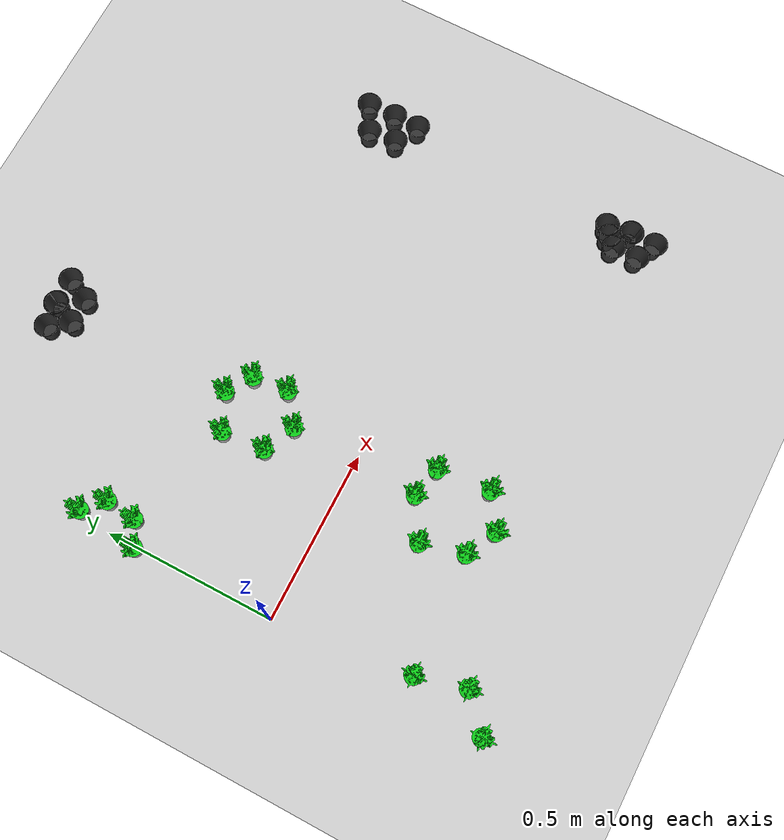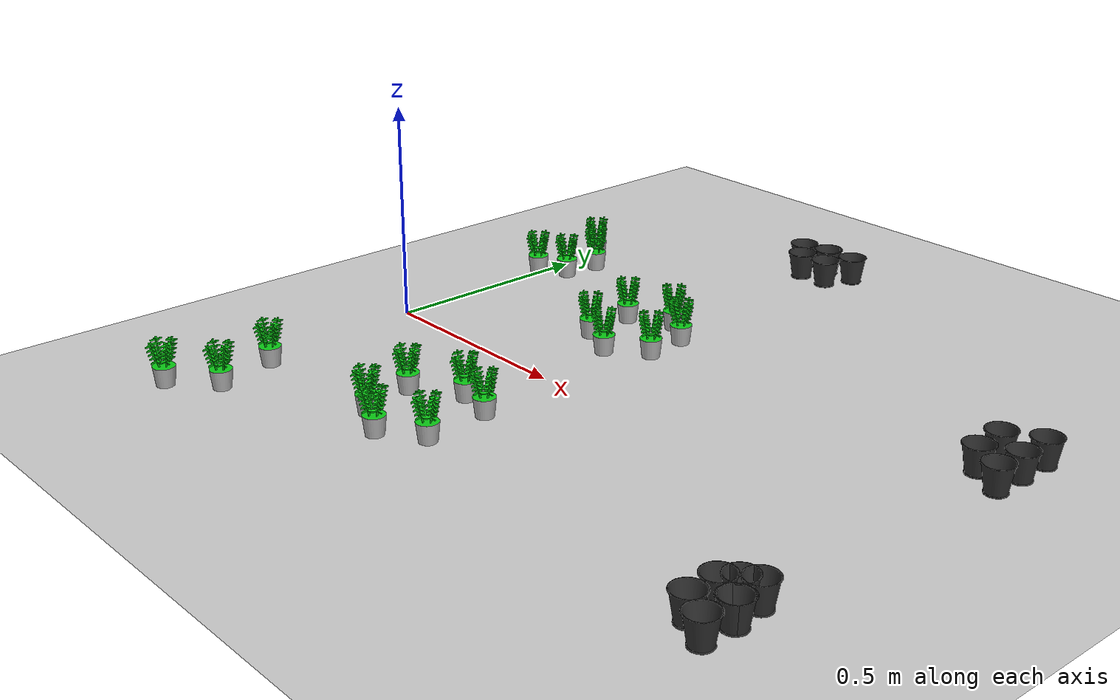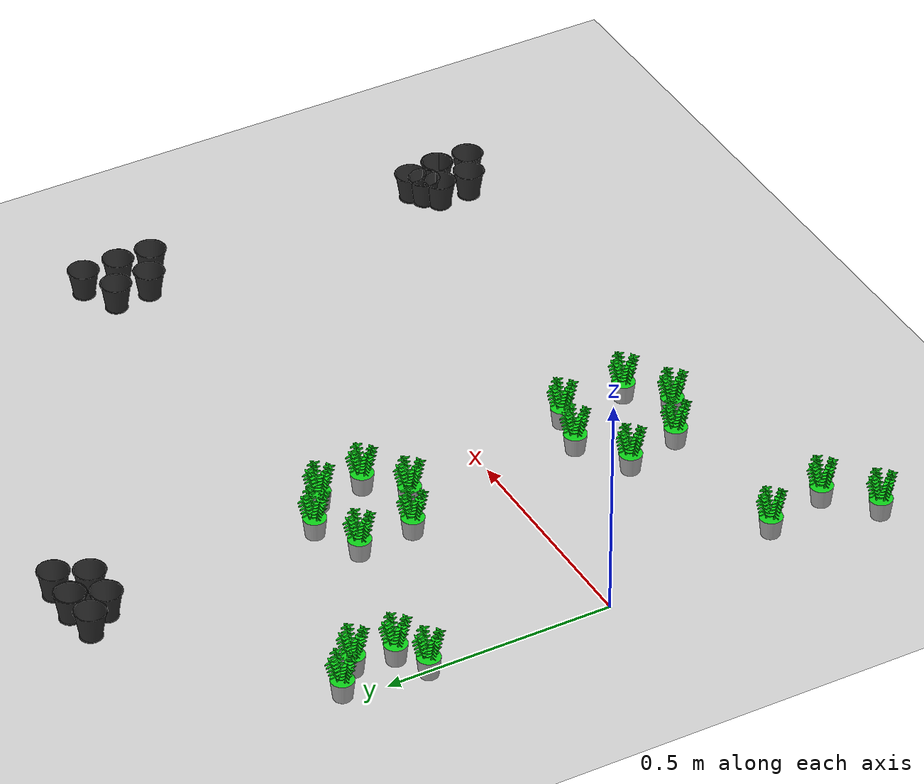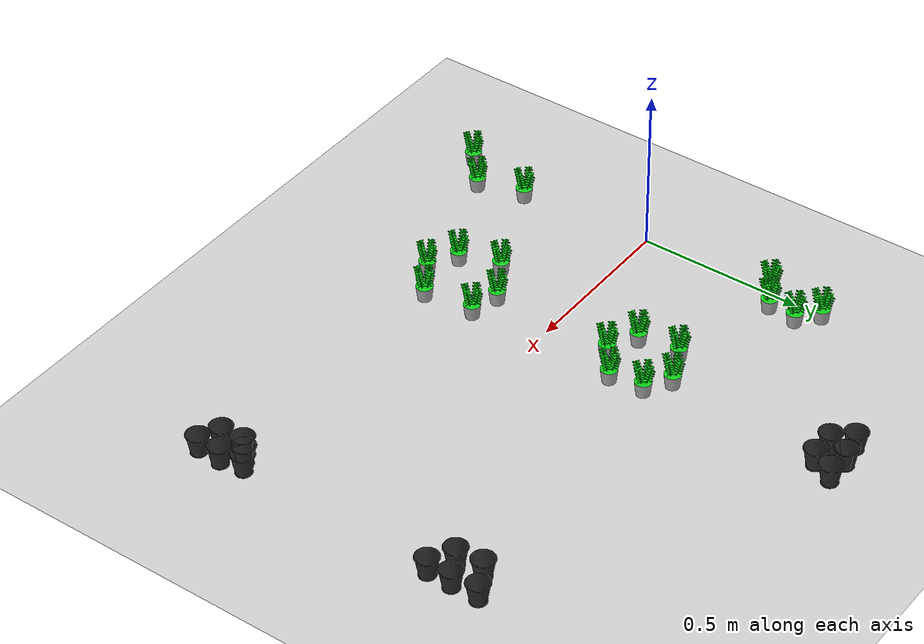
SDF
<sdf version="1.7">
 <world name="arena_eurobot">
  <model name="ground_plane">
   <static>true</static>
   <link name="link">
    <collision name="collision">
     <geometry><plane><normal>0 0 0</normal><size>100 100</size></plane></geometry>
    </collision>
    <visual name="visual">
     <geometry><plane><normal>0 0 0</normal><size>100 100</size></plane></geometry>
     <material>
      <ambient>0.8 0.8 0.8 1</ambient>
      <diffuse>0.8 0.8 0.8 1</diffuse>
      <specular>0.8 0.8 0.8 1</specular>
     </material>
    </visual>
   </link>
  </model>
  <model name="pot_0">
   <link name="base_link">
    <inertial>
     <pose>0 0 0.028448 0 -0 0</pose>
     <mass>0.016564</mass>
     <inertia>
      <ixx>1.415e-05</ixx>
      <ixy>-1.1112e-10</ixy>
      <ixz>-4.1716e-13</ixz>
      <iyy>1.4151e-05</iyy>
      <iyz>-1.5885e-13</iyz>
      <izz>1.1192e-05</izz>
     </inertia>
    </inertial>
    <collision name="base_link_collision">
     <geometry><mesh><scale>1 1 1</scale><uri>pot/meshes/base_link.dae</uri></mesh></geometry>
    </collision>
    <visual name="base_link_visual">
     <geometry><mesh><scale>1 1 1</scale><uri>pot/meshes/base_link.dae</uri></mesh></geometry>
    </visual>
   </link>
   <pose>1.39387 -0.336566 0 0 -0 0</pose>
  </model>
  <model name="pot_17">
   <link name="base_link">
    <inertial>
     <pose>0 0 0.028448 0 -0 0</pose>
     <mass>0.016564</mass>
     <inertia>
      <ixx>1.415e-05</ixx>
      <ixy>-1.1112e-10</ixy>
      <ixz>-4.1716e-13</ixz>
      <iyy>1.4151e-05</iyy>
      <iyz>-1.5885e-13</iyz>
      <izz>1.1192e-05</izz>
     </inertia>
    </inertial>
    <collision name="base_link_collision">
     <geometry><mesh><scale>1 1 1</scale><uri>pot/meshes/base_link.dae</uri></mesh></geometry>
    </collision>
    <visual name="base_link_visual">
     <geometry><mesh><scale>1 1 1</scale><uri>pot/meshes/base_link.dae</uri></mesh></geometry>
    </visual>
   </link>
   <pose>0.488812 0.949565 0 0 -0 0</pose>
  </model>
  <model name="pot_18">
   <link name="base_link">
    <inertial>
     <pose>0 0 0.028448 0 -0 0</pose>
     <mass>0.016564</mass>
     <inertia>
      <ixx>1.415e-05</ixx>
      <ixy>-1.1112e-10</ixy>
      <ixz>-4.1716e-13</ixz>
      <iyy>1.4151e-05</iyy>
      <iyz>-1.5885e-13</iyz>
      <izz>1.1192e-05</izz>
     </inertia>
    </inertial>
    <collision name="base_link_collision">
     <geometry><mesh><scale>1 1 1</scale><uri>pot/meshes/base_link.dae</uri></mesh></geometry>
    </collision>
    <visual name="base_link_visual">
     <geometry><mesh><scale>1 1 1</scale><uri>pot/meshes/base_link.dae</uri></mesh></geometry>
    </visual>
   </link>
   <pose>0.486427 0.95078 0 0 -0 0</pose>
  </model>
  <model name="pot_19">
   <link name="base_link">
    <inertial>
     <pose>0 0 0.028448 0 -0 0</pose>
     <mass>0.016564</mass>
     <inertia>
      <ixx>1.415e-05</ixx>
      <ixy>-1.1112e-10</ixy>
      <ixz>-4.1716e-13</ixz>
      <iyy>1.4151e-05</iyy>
      <iyz>-1.5885e-13</iyz>
      <izz>1.1192e-05</izz>
     </inertia>
    </inertial>
    <collision name="base_link_collision">
     <geometry><mesh><scale>1 1 1</scale><uri>pot/meshes/base_link.dae</uri></mesh></geometry>
    </collision>
    <visual name="base_link_visual">
     <geometry><mesh><scale>1 1 1</scale><uri>pot/meshes/base_link.dae</uri></mesh></geometry>
    </visual>
   </link>
   <pose>0.565174 0.949425 0 0 -0 0</pose>
  </model>
  <model name="pot_20">
   <link name="base_link">
    <inertial>
     <pose>0 0 0.028448 0 -0 0</pose>
     <mass>0.016564</mass>
     <inertia>
      <ixx>1.415e-05</ixx>
      <ixy>-1.1112e-10</ixy>
      <ixz>-4.1716e-13</ixz>
      <iyy>1.4151e-05</iyy>
      <iyz>-1.5885e-13</iyz>
      <izz>1.1192e-05</izz>
     </inertia>
    </inertial>
    <collision name="base_link_collision">
     <geometry><mesh><scale>1 1 1</scale><uri>pot/meshes/base_link.dae</uri></mesh></geometry>
    </collision>
    <visual name="base_link_visual">
     <geometry><mesh><scale>1 1 1</scale><uri>pot/meshes/base_link.dae</uri></mesh></geometry>
    </visual>
   </link>
   <pose>0.417508 0.939307 0 0 -0 0</pose>
  </model>
  <model name="pot_21">
   <link name="base_link">
    <inertial>
     <pose>0 0 0.028448 0 -0 0</pose>
     <mass>0.016564</mass>
     <inertia>
      <ixx>1.415e-05</ixx>
      <ixy>-1.1112e-10</ixy>
      <ixz>-4.1716e-13</ixz>
      <iyy>1.4151e-05</iyy>
      <iyz>-1.5885e-13</iyz>
      <izz>1.1192e-05</izz>
     </inertia>
    </inertial>
    <collision name="base_link_collision">
     <geometry><mesh><scale>1 1 1</scale><uri>pot/meshes/base_link.dae</uri></mesh></geometry>
    </collision>
    <visual name="base_link_visual">
     <geometry><mesh><scale>1 1 1</scale><uri>pot/meshes/base_link.dae</uri></mesh></geometry>
    </visual>
   </link>
   <pose>0.458127 0.884732 0 0 -0 0</pose>
  </model>
  <model name="pot_22">
   <link name="base_link">
    <inertial>
     <pose>0 0 0.028448 0 -0 0</pose>
     <mass>0.016564</mass>
     <inertia>
      <ixx>1.415e-05</ixx>
      <ixy>-1.1112e-10</ixy>
      <ixz>-4.1716e-13</ixz>
      <iyy>1.4151e-05</iyy>
      <iyz>-1.5885e-13</iyz>
      <izz>1.1192e-05</izz>
     </inertia>
    </inertial>
    <collision name="base_link_collision">
     <geometry><mesh><scale>1 1 1</scale><uri>pot/meshes/base_link.dae</uri></mesh></geometry>
    </collision>
    <visual name="base_link_visual">
     <geometry><mesh><scale>1 1 1</scale><uri>pot/meshes/base_link.dae</uri></mesh></geometry>
    </visual>
   </link>
   <pose>0.533024 0.884479 0 0 -0 0</pose>
  </model>
  <model name="pot_23">
   <link name="base_link">
    <inertial>
     <pose>0 0 0.028448 0 -0 0</pose>
     <mass>0.016564</mass>
     <inertia>
      <ixx>1.415e-05</ixx>
      <ixy>-1.1112e-10</ixy>
      <ixz>-4.1716e-13</ixz>
      <iyy>1.4151e-05</iyy>
      <iyz>-1.5885e-13</iyz>
      <izz>1.1192e-05</izz>
     </inertia>
    </inertial>
    <collision name="base_link_collision">
     <geometry><mesh><scale>1 1 1</scale><uri>pot/meshes/base_link.dae</uri></mesh></geometry>
    </collision>
    <visual name="base_link_visual">
     <geometry><mesh><scale>1 1 1</scale><uri>pot/meshes/base_link.dae</uri></mesh></geometry>
    </visual>
   </link>
   <pose>1.36873 0.420007 0 0 -0 0</pose>
  </model>
  <model name="pot_24">
   <link name="base_link">
    <inertial>
     <pose>0 0 0.028448 0 -0 0</pose>
     <mass>0.016564</mass>
     <inertia>
      <ixx>1.415e-05</ixx>
      <ixy>-1.1112e-10</ixy>
      <ixz>-4.1716e-13</ixz>
      <iyy>1.4151e-05</iyy>
      <iyz>-1.5885e-13</iyz>
      <izz>1.1192e-05</izz>
     </inertia>
    </inertial>
    <collision name="base_link_collision">
     <geometry><mesh><scale>1 1 1</scale><uri>pot/meshes/base_link.dae</uri></mesh></geometry>
    </collision>
    <visual name="base_link_visual">
     <geometry><mesh><scale>1 1 1</scale><uri>pot/meshes/base_link.dae</uri></mesh></geometry>
    </visual>
   </link>
   <pose>1.44644 0.377024 0 0 -0 0</pose>
  </model>
  <model name="pot_25">
   <link name="base_link">
    <inertial>
     <pose>0 0 0.028448 0 -0 0</pose>
     <mass>0.016564</mass>
     <inertia>
      <ixx>1.415e-05</ixx>
      <ixy>-1.1112e-10</ixy>
      <ixz>-4.1716e-13</ixz>
      <iyy>1.4151e-05</iyy>
      <iyz>-1.5885e-13</iyz>
      <izz>1.1192e-05</izz>
     </inertia>
    </inertial>
    <collision name="base_link_collision">
     <geometry><mesh><scale>1 1 1</scale><uri>pot/meshes/base_link.dae</uri></mesh></geometry>
    </collision>
    <visual name="base_link_visual">
     <geometry><mesh><scale>1 1 1</scale><uri>pot/meshes/base_link.dae</uri></mesh></geometry>
    </visual>
   </link>
   <pose>1.44474 0.300915 0 0 -0 0</pose>
  </model>
  <model name="pot_26">
   <link name="base_link">
    <inertial>
     <pose>0 0 0.028448 0 -0 0</pose>
     <mass>0.016564</mass>
     <inertia>
      <ixx>1.415e-05</ixx>
      <ixy>-1.1112e-10</ixy>
      <ixz>-4.1716e-13</ixz>
      <iyy>1.4151e-05</iyy>
      <iyz>-1.5885e-13</iyz>
      <izz>1.1192e-05</izz>
     </inertia>
    </inertial>
    <collision name="base_link_collision">
     <geometry><mesh><scale>1 1 1</scale><uri>pot/meshes/base_link.dae</uri></mesh></geometry>
    </collision>
    <visual name="base_link_visual">
     <geometry><mesh><scale>1 1 1</scale><uri>pot/meshes/base_link.dae</uri></mesh></geometry>
    </visual>
   </link>
   <pose>1.44481 0.459662 0 0 -0 0</pose>
  </model>
  <model name="pot_27">
   <link name="base_link">
    <inertial>
     <pose>0 0 0.028448 0 -0 0</pose>
     <mass>0.016564</mass>
     <inertia>
      <ixx>1.415e-05</ixx>
      <ixy>-1.1112e-10</ixy>
      <ixz>-4.1716e-13</ixz>
      <iyy>1.4151e-05</iyy>
      <iyz>-1.5885e-13</iyz>
      <izz>1.1192e-05</izz>
     </inertia>
    </inertial>
    <collision name="base_link_collision">
     <geometry><mesh><scale>1 1 1</scale><uri>pot/meshes/base_link.dae</uri></mesh></geometry>
    </collision>
    <visual name="base_link_visual">
     <geometry><mesh><scale>1 1 1</scale><uri>pot/meshes/base_link.dae</uri></mesh></geometry>
    </visual>
   </link>
   <pose>1.44644 0.377024 0 0 -0 0</pose>
  </model>
  <model name="pot_28">
   <link name="base_link">
    <inertial>
     <pose>0 0 0.028448 0 -0 0</pose>
     <mass>0.016564</mass>
     <inertia>
      <ixx>1.415e-05</ixx>
      <ixy>-1.1112e-10</ixy>
      <ixz>-4.1716e-13</ixz>
      <iyy>1.4151e-05</iyy>
      <iyz>-1.5885e-13</iyz>
      <izz>1.1192e-05</izz>
     </inertia>
    </inertial>
    <collision name="base_link_collision">
     <geometry><mesh><scale>1 1 1</scale><uri>pot/meshes/base_link.dae</uri></mesh></geometry>
    </collision>
    <visual name="base_link_visual">
     <geometry><mesh><scale>1 1 1</scale><uri>pot/meshes/base_link.dae</uri></mesh></geometry>
    </visual>
   </link>
   <pose>1.37505 0.338539 0 0 -0 0</pose>
  </model>
  <model name="pot_30">
   <link name="base_link">
    <inertial>
     <pose>0 0 0.028448 0 -0 0</pose>
     <mass>0.016564</mass>
     <inertia>
      <ixx>1.415e-05</ixx>
      <ixy>-1.1112e-10</ixy>
      <ixz>-4.1716e-13</ixz>
      <iyy>1.4151e-05</iyy>
      <iyz>-1.5885e-13</iyz>
      <izz>1.1192e-05</izz>
     </inertia>
    </inertial>
    <collision name="base_link_collision">
     <geometry><mesh><scale>1 1 1</scale><uri>pot/meshes/base_link.dae</uri></mesh></geometry>
    </collision>
    <visual name="base_link_visual">
     <geometry><mesh><scale>1 1 1</scale><uri>pot/meshes/base_link.dae</uri></mesh></geometry>
    </visual>
   </link>
   <pose>1.43129 -0.390212 0 0 -0 0</pose>
  </model>
  <model name="pot_29">
   <link name="base_link">
    <inertial>
     <pose>0 0 0.028448 0 -0 0</pose>
     <mass>0.016564</mass>
     <inertia>
      <ixx>1.415e-05</ixx>
      <ixy>-1.1112e-10</ixy>
      <ixz>-4.1716e-13</ixz>
      <iyy>1.4151e-05</iyy>
      <iyz>-1.5885e-13</iyz>
      <izz>1.1192e-05</izz>
     </inertia>
    </inertial>
    <collision name="base_link_collision">
     <geometry><mesh><scale>1 1 1</scale><uri>pot/meshes/base_link.dae</uri></mesh></geometry>
    </collision>
    <visual name="base_link_visual">
     <geometry><mesh><scale>1 1 1</scale><uri>pot/meshes/base_link.dae</uri></mesh></geometry>
    </visual>
   </link>
   <pose>1.43255 -0.388499 0 0 -0 0</pose>
  </model>
  <model name="pot_31">
   <link name="base_link">
    <inertial>
     <pose>0 0 0.028448 0 -0 0</pose>
     <mass>0.016564</mass>
     <inertia>
      <ixx>1.415e-05</ixx>
      <ixy>-1.1112e-10</ixy>
      <ixz>-4.1716e-13</ixz>
      <iyy>1.4151e-05</iyy>
      <iyz>-1.5885e-13</iyz>
      <izz>1.1192e-05</izz>
     </inertia>
    </inertial>
    <collision name="base_link_collision">
     <geometry><mesh><scale>1 1 1</scale><uri>pot/meshes/base_link.dae</uri></mesh></geometry>
    </collision>
    <visual name="base_link_visual">
     <geometry><mesh><scale>1 1 1</scale><uri>pot/meshes/base_link.dae</uri></mesh></geometry>
    </visual>
   </link>
   <pose>1.42152 -0.317753 0 0 -0 0</pose>
  </model>
  <model name="pot_32">
   <link name="base_link">
    <inertial>
     <pose>0 0 0.028448 0 -0 0</pose>
     <mass>0.016564</mass>
     <inertia>
      <ixx>1.415e-05</ixx>
      <ixy>-1.1112e-10</ixy>
      <ixz>-4.1716e-13</ixz>
      <iyy>1.4151e-05</iyy>
      <iyz>-1.5885e-13</iyz>
      <izz>1.1192e-05</izz>
     </inertia>
    </inertial>
    <collision name="base_link_collision">
     <geometry><mesh><scale>1 1 1</scale><uri>pot/meshes/base_link.dae</uri></mesh></geometry>
    </collision>
    <visual name="base_link_visual">
     <geometry><mesh><scale>1 1 1</scale><uri>pot/meshes/base_link.dae</uri></mesh></geometry>
    </visual>
   </link>
   <pose>1.42984 -0.463994 0 0 -0 0</pose>
  </model>
  <model name="pot_33">
   <link name="base_link">
    <inertial>
     <pose>0 0 0.028448 0 -0 0</pose>
     <mass>0.016564</mass>
     <inertia>
      <ixx>1.415e-05</ixx>
      <ixy>-1.1112e-10</ixy>
      <ixz>-4.1716e-13</ixz>
      <iyy>1.4151e-05</iyy>
      <iyz>-1.5885e-13</iyz>
      <izz>1.1192e-05</izz>
     </inertia>
    </inertial>
    <collision name="base_link_collision">
     <geometry><mesh><scale>1 1 1</scale><uri>pot/meshes/base_link.dae</uri></mesh></geometry>
    </collision>
    <visual name="base_link_visual">
     <geometry><mesh><scale>1 1 1</scale><uri>pot/meshes/base_link.dae</uri></mesh></geometry>
    </visual>
   </link>
   <pose>1.36744 -0.362311 0 0 -0 0</pose>
  </model>
  <model name="pot_34">
   <link name="base_link">
    <inertial>
     <pose>0 0 0.028448 0 -0 0</pose>
     <mass>0.016564</mass>
     <inertia>
      <ixx>1.415e-05</ixx>
      <ixy>-1.1112e-10</ixy>
      <ixz>-4.1716e-13</ixz>
      <iyy>1.4151e-05</iyy>
      <iyz>-1.5885e-13</iyz>
      <izz>1.1192e-05</izz>
     </inertia>
    </inertial>
    <collision name="base_link_collision">
     <geometry><mesh><scale>1 1 1</scale><uri>pot/meshes/base_link.dae</uri></mesh></geometry>
    </collision>
    <visual name="base_link_visual">
     <geometry><mesh><scale>1 1 1</scale><uri>pot/meshes/base_link.dae</uri></mesh></geometry>
    </visual>
   </link>
   <pose>1.3699 -0.434365 0 0 -0 0</pose>
  </model>
  <model name="plant_11">
   <link name="base_link">
    <inertial>
     <pose>-0 0 0.033735 0 -0 0</pose>
     <mass>0.086038</mass>
     <inertia>
      <ixx>6.2923e-05</ixx>
      <ixy>-1.3403e-11</ixy>
      <ixz>2.9225e-11</ixz>
      <iyy>6.2923e-05</iyy>
      <iyz>-3.3028e-10</iyz>
      <izz>2.4458e-05</izz>
     </inertia>
    </inertial>
    <collision name="base_link_collision">
     <geometry><mesh><scale>1 1 1</scale><uri>plant/meshes/base_link.dae</uri></mesh></geometry>
    </collision>
    <visual name="base_link_visual">
     <geometry><mesh><scale>1 1 1</scale><uri>plant/meshes/base_link.dae</uri></mesh></geometry>
    </visual>
   </link>
   <pose>-0.006185 0.411903 0 0 -0 0</pose>
  </model>
  <model name="plant_14">
   <link name="base_link">
    <inertial>
     <pose>-0 0 0.033735 0 -0 0</pose>
     <mass>0.086038</mass>
     <inertia>
      <ixx>6.2923e-05</ixx>
      <ixy>-1.3403e-11</ixy>
      <ixz>2.9225e-11</ixz>
      <iyy>6.2923e-05</iyy>
      <iyz>-3.3028e-10</iyz>
      <izz>2.4458e-05</izz>
     </inertia>
    </inertial>
    <collision name="base_link_collision">
     <geometry><mesh><scale>1 1 1</scale><uri>plant/meshes/base_link.dae</uri></mesh></geometry>
    </collision>
    <visual name="base_link_visual">
     <geometry><mesh><scale>1 1 1</scale><uri>plant/meshes/base_link.dae</uri></mesh></geometry>
    </visual>
   </link>
   <pose>0.014437 0.591591 0 0 -0 0</pose>
  </model>
  <model name="plant_15">
   <link name="base_link">
    <inertial>
     <pose>-0 0 0.033735 0 -0 0</pose>
     <mass>0.086038</mass>
     <inertia>
      <ixx>6.2923e-05</ixx>
      <ixy>-1.3403e-11</ixy>
      <ixz>2.9225e-11</ixz>
      <iyy>6.2923e-05</iyy>
      <iyz>-3.3028e-10</iyz>
      <izz>2.4458e-05</izz>
     </inertia>
    </inertial>
    <collision name="base_link_collision">
     <geometry><mesh><scale>1 1 1</scale><uri>plant/meshes/base_link.dae</uri></mesh></geometry>
    </collision>
    <visual name="base_link_visual">
     <geometry><mesh><scale>1 1 1</scale><uri>plant/meshes/base_link.dae</uri></mesh></geometry>
    </visual>
   </link>
   <pose>0.070868 0.538167 0 0 -0 0</pose>
  </model>
  <model name="plant_16">
   <link name="base_link">
    <inertial>
     <pose>-0 0 0.033735 0 -0 0</pose>
     <mass>0.086038</mass>
     <inertia>
      <ixx>6.2923e-05</ixx>
      <ixy>-1.3403e-11</ixy>
      <ixz>2.9225e-11</ixz>
      <iyy>6.2923e-05</iyy>
      <iyz>-3.3028e-10</iyz>
      <izz>2.4458e-05</izz>
     </inertia>
    </inertial>
    <collision name="base_link_collision">
     <geometry><mesh><scale>1 1 1</scale><uri>plant/meshes/base_link.dae</uri></mesh></geometry>
    </collision>
    <visual name="base_link_visual">
     <geometry><mesh><scale>1 1 1</scale><uri>plant/meshes/base_link.dae</uri></mesh></geometry>
    </visual>
   </link>
   <pose>0.060494 0.4495 0 0 -0 0</pose>
  </model>
  <model name="plant_17">
   <link name="base_link">
    <inertial>
     <pose>-0 0 0.033735 0 -0 0</pose>
     <mass>0.086038</mass>
     <inertia>
      <ixx>6.2923e-05</ixx>
      <ixy>-1.3403e-11</ixy>
      <ixz>2.9225e-11</ixz>
      <iyy>6.2923e-05</iyy>
      <iyz>-3.3028e-10</iyz>
      <izz>2.4458e-05</izz>
     </inertia>
    </inertial>
    <collision name="base_link_collision">
     <geometry><mesh><scale>1 1 1</scale><uri>plant/meshes/base_link.dae</uri></mesh></geometry>
    </collision>
    <visual name="base_link_visual">
     <geometry><mesh><scale>1 1 1</scale><uri>plant/meshes/base_link.dae</uri></mesh></geometry>
    </visual>
   </link>
   <pose>0.482792 0.190736 0 0 -0 0</pose>
  </model>
  <model name="plant_18">
   <link name="base_link">
    <inertial>
     <pose>-0 0 0.033735 0 -0 0</pose>
     <mass>0.086038</mass>
     <inertia>
      <ixx>6.2923e-05</ixx>
      <ixy>-1.3403e-11</ixy>
      <ixz>2.9225e-11</ixz>
      <iyy>6.2923e-05</iyy>
      <iyz>-3.3028e-10</iyz>
      <izz>2.4458e-05</izz>
     </inertia>
    </inertial>
    <collision name="base_link_collision">
     <geometry><mesh><scale>1 1 1</scale><uri>plant/meshes/base_link.dae</uri></mesh></geometry>
    </collision>
    <visual name="base_link_visual">
     <geometry><mesh><scale>1 1 1</scale><uri>plant/meshes/base_link.dae</uri></mesh></geometry>
    </visual>
   </link>
   <pose>0.391075 0.232814 0 0 -0 0</pose>
  </model>
  <model name="plant_19">
   <link name="base_link">
    <inertial>
     <pose>-0 0 0.033735 0 -0 0</pose>
     <mass>0.086038</mass>
     <inertia>
      <ixx>6.2923e-05</ixx>
      <ixy>-1.3403e-11</ixy>
      <ixz>2.9225e-11</ixz>
      <iyy>6.2923e-05</iyy>
      <iyz>-3.3028e-10</iyz>
      <izz>2.4458e-05</izz>
     </inertia>
    </inertial>
    <collision name="base_link_collision">
     <geometry><mesh><scale>1 1 1</scale><uri>plant/meshes/base_link.dae</uri></mesh></geometry>
    </collision>
    <visual name="base_link_visual">
     <geometry><mesh><scale>1 1 1</scale><uri>plant/meshes/base_link.dae</uri></mesh></geometry>
    </visual>
   </link>
   <pose>0.381573 0.358926 0 0 -0 0</pose>
  </model>
  <model name="plant_20">
   <link name="base_link">
    <inertial>
     <pose>-0 0 0.033735 0 -0 0</pose>
     <mass>0.086038</mass>
     <inertia>
      <ixx>6.2923e-05</ixx>
      <ixy>-1.3403e-11</ixy>
      <ixz>2.9225e-11</ixz>
      <iyy>6.2923e-05</iyy>
      <iyz>-3.3028e-10</iyz>
      <izz>2.4458e-05</izz>
     </inertia>
    </inertial>
    <collision name="base_link_collision">
     <geometry><mesh><scale>1 1 1</scale><uri>plant/meshes/base_link.dae</uri></mesh></geometry>
    </collision>
    <visual name="base_link_visual">
     <geometry><mesh><scale>1 1 1</scale><uri>plant/meshes/base_link.dae</uri></mesh></geometry>
    </visual>
   </link>
   <pose>0.484885 0.406774 0 0 -0 0</pose>
  </model>
  <model name="plant_21">
   <link name="base_link">
    <inertial>
     <pose>-0 0 0.033735 0 -0 0</pose>
     <mass>0.086038</mass>
     <inertia>
      <ixx>6.2923e-05</ixx>
      <ixy>-1.3403e-11</ixy>
      <ixz>2.9225e-11</ixz>
      <iyy>6.2923e-05</iyy>
      <iyz>-3.3028e-10</iyz>
      <izz>2.4458e-05</izz>
     </inertia>
    </inertial>
    <collision name="base_link_collision">
     <geometry><mesh><scale>1 1 1</scale><uri>plant/meshes/base_link.dae</uri></mesh></geometry>
    </collision>
    <visual name="base_link_visual">
     <geometry><mesh><scale>1 1 1</scale><uri>plant/meshes/base_link.dae</uri></mesh></geometry>
    </visual>
   </link>
   <pose>0.556921 0.358892 0 0 -0 0</pose>
  </model>
  <model name="plant_22">
   <link name="base_link">
    <inertial>
     <pose>-0 0 0.033735 0 -0 0</pose>
     <mass>0.086038</mass>
     <inertia>
      <ixx>6.2923e-05</ixx>
      <ixy>-1.3403e-11</ixy>
      <ixz>2.9225e-11</ixz>
      <iyy>6.2923e-05</iyy>
      <iyz>-3.3028e-10</iyz>
      <izz>2.4458e-05</izz>
     </inertia>
    </inertial>
    <collision name="base_link_collision">
     <geometry><mesh><scale>1 1 1</scale><uri>plant/meshes/base_link.dae</uri></mesh></geometry>
    </collision>
    <visual name="base_link_visual">
     <geometry><mesh><scale>1 1 1</scale><uri>plant/meshes/base_link.dae</uri></mesh></geometry>
    </visual>
   </link>
   <pose>0.567146 0.255055 0 0 -0 0</pose>
  </model>
  <model name="plant_23">
   <link name="base_link">
    <inertial>
     <pose>-0 0 0.033735 0 -0 0</pose>
     <mass>0.086038</mass>
     <inertia>
      <ixx>6.2923e-05</ixx>
      <ixy>-1.3403e-11</ixy>
      <ixz>2.9225e-11</ixz>
      <iyy>6.2923e-05</iyy>
      <iyz>-3.3028e-10</iyz>
      <izz>2.4458e-05</izz>
     </inertia>
    </inertial>
    <collision name="base_link_collision">
     <geometry><mesh><scale>1 1 1</scale><uri>plant/meshes/base_link.dae</uri></mesh></geometry>
    </collision>
    <visual name="base_link_visual">
     <geometry><mesh><scale>1 1 1</scale><uri>plant/meshes/base_link.dae</uri></mesh></geometry>
    </visual>
   </link>
   <pose>0.48063 -0.425614 0 0 -0 0</pose>
  </model>
  <model name="plant_24">
   <link name="base_link">
    <inertial>
     <pose>-0 0 0.033735 0 -0 0</pose>
     <mass>0.086038</mass>
     <inertia>
      <ixx>6.2923e-05</ixx>
      <ixy>-1.3403e-11</ixy>
      <ixz>2.9225e-11</ixz>
      <iyy>6.2923e-05</iyy>
      <iyz>-3.3028e-10</iyz>
      <izz>2.4458e-05</izz>
     </inertia>
    </inertial>
    <collision name="base_link_collision">
     <geometry><mesh><scale>1 1 1</scale><uri>plant/meshes/base_link.dae</uri></mesh></geometry>
    </collision>
    <visual name="base_link_visual">
     <geometry><mesh><scale>1 1 1</scale><uri>plant/meshes/base_link.dae</uri></mesh></geometry>
    </visual>
   </link>
   <pose>0.39115 -0.38107 0 0 -0 0</pose>
  </model>
  <model name="plant_25">
   <link name="base_link">
    <inertial>
     <pose>-0 0 0.033735 0 -0 0</pose>
     <mass>0.086038</mass>
     <inertia>
      <ixx>6.2923e-05</ixx>
      <ixy>-1.3403e-11</ixy>
      <ixz>2.9225e-11</ixz>
      <iyy>6.2923e-05</iyy>
      <iyz>-3.3028e-10</iyz>
      <izz>2.4458e-05</izz>
     </inertia>
    </inertial>
    <collision name="base_link_collision">
     <geometry><mesh><scale>1 1 1</scale><uri>plant/meshes/base_link.dae</uri></mesh></geometry>
    </collision>
    <visual name="base_link_visual">
     <geometry><mesh><scale>1 1 1</scale><uri>plant/meshes/base_link.dae</uri></mesh></geometry>
    </visual>
   </link>
   <pose>0.359525 -0.255735 0 0 -0 0</pose>
  </model>
  <model name="plant_26">
   <link name="base_link">
    <inertial>
     <pose>-0 0 0.033735 0 -0 0</pose>
     <mass>0.086038</mass>
     <inertia>
      <ixx>6.2923e-05</ixx>
      <ixy>-1.3403e-11</ixy>
      <ixz>2.9225e-11</ixz>
      <iyy>6.2923e-05</iyy>
      <iyz>-3.3028e-10</iyz>
      <izz>2.4458e-05</izz>
     </inertia>
    </inertial>
    <collision name="base_link_collision">
     <geometry><mesh><scale>1 1 1</scale><uri>plant/meshes/base_link.dae</uri></mesh></geometry>
    </collision>
    <visual name="base_link_visual">
     <geometry><mesh><scale>1 1 1</scale><uri>plant/meshes/base_link.dae</uri></mesh></geometry>
    </visual>
   </link>
   <pose>0.470466 -0.188744 0 0 -0 0</pose>
  </model>
  <model name="plant_27">
   <link name="base_link">
    <inertial>
     <pose>-0 0 0.033735 0 -0 0</pose>
     <mass>0.086038</mass>
     <inertia>
      <ixx>6.2923e-05</ixx>
      <ixy>-1.3403e-11</ixy>
      <ixz>2.9225e-11</ixz>
      <iyy>6.2923e-05</iyy>
      <iyz>-3.3028e-10</iyz>
      <izz>2.4458e-05</izz>
     </inertia>
    </inertial>
    <collision name="base_link_collision">
     <geometry><mesh><scale>1 1 1</scale><uri>plant/meshes/base_link.dae</uri></mesh></geometry>
    </collision>
    <visual name="base_link_visual">
     <geometry><mesh><scale>1 1 1</scale><uri>plant/meshes/base_link.dae</uri></mesh></geometry>
    </visual>
   </link>
   <pose>0.561154 -0.20932 0 0 -0 0</pose>
  </model>
  <model name="plant_28">
   <link name="base_link">
    <inertial>
     <pose>-0 0 0.033735 0 -0 0</pose>
     <mass>0.086038</mass>
     <inertia>
      <ixx>6.2923e-05</ixx>
      <ixy>-1.3403e-11</ixy>
      <ixz>2.9225e-11</ixz>
      <iyy>6.2923e-05</iyy>
      <iyz>-3.3028e-10</iyz>
      <izz>2.4458e-05</izz>
     </inertia>
    </inertial>
    <collision name="base_link_collision">
     <geometry><mesh><scale>1 1 1</scale><uri>plant/meshes/base_link.dae</uri></mesh></geometry>
    </collision>
    <visual name="base_link_visual">
     <geometry><mesh><scale>1 1 1</scale><uri>plant/meshes/base_link.dae</uri></mesh></geometry>
    </visual>
   </link>
   <pose>0.575551 -0.363792 0 0 -0 0</pose>
  </model>
  <model name="plant_29">
   <link name="base_link">
    <inertial>
     <pose>-0 0 0.033735 0 -0 0</pose>
     <mass>0.086038</mass>
     <inertia>
      <ixx>6.2923e-05</ixx>
      <ixy>-1.3403e-11</ixy>
      <ixz>2.9225e-11</ixz>
      <iyy>6.2923e-05</iyy>
      <iyz>-3.3028e-10</iyz>
      <izz>2.4458e-05</izz>
     </inertia>
    </inertial>
    <collision name="base_link_collision">
     <geometry><mesh><scale>1 1 1</scale><uri>plant/meshes/base_link.dae</uri></mesh></geometry>
    </collision>
    <visual name="base_link_visual">
     <geometry><mesh><scale>1 1 1</scale><uri>plant/meshes/base_link.dae</uri></mesh></geometry>
    </visual>
   </link>
   <pose>-0.011595 -0.625253 0 0 -0 0</pose>
  </model>
  <model name="plant_33">
   <link name="base_link">
    <inertial>
     <pose>-0 0 0.033735 0 -0 0</pose>
     <mass>0.086038</mass>
     <inertia>
      <ixx>6.2923e-05</ixx>
      <ixy>-1.3403e-11</ixy>
      <ixz>2.9225e-11</ixz>
      <iyy>6.2923e-05</iyy>
      <iyz>-3.3028e-10</iyz>
      <izz>2.4458e-05</izz>
     </inertia>
    </inertial>
    <collision name="base_link_collision">
     <geometry><mesh><scale>1 1 1</scale><uri>plant/meshes/base_link.dae</uri></mesh></geometry>
    </collision>
    <visual name="base_link_visual">
     <geometry><mesh><scale>1 1 1</scale><uri>plant/meshes/base_link.dae</uri></mesh></geometry>
    </visual>
   </link>
   <pose>0.04528 -0.399845 0 0 -0 0</pose>
  </model>
  <model name="plant_34">
   <link name="base_link">
    <inertial>
     <pose>-0 0 0.033735 0 -0 0</pose>
     <mass>0.086038</mass>
     <inertia>
      <ixx>6.2923e-05</ixx>
      <ixy>-1.3403e-11</ixy>
      <ixz>2.9225e-11</ixz>
      <iyy>6.2923e-05</iyy>
      <iyz>-3.3028e-10</iyz>
      <izz>2.4458e-05</izz>
     </inertia>
    </inertial>
    <collision name="base_link_collision">
     <geometry><mesh><scale>1 1 1</scale><uri>plant/meshes/base_link.dae</uri></mesh></geometry>
    </collision>
    <visual name="base_link_visual">
     <geometry><mesh><scale>1 1 1</scale><uri>plant/meshes/base_link.dae</uri></mesh></geometry>
    </visual>
   </link>
   <pose>0.081971 -0.541924 0 0 -0 0</pose>
  </model>
 </world>
</sdf>
